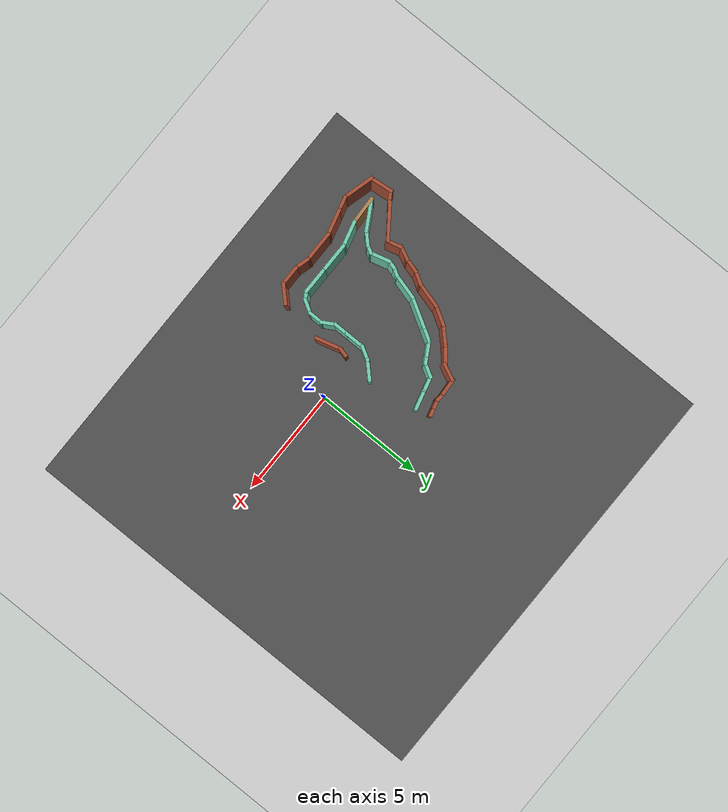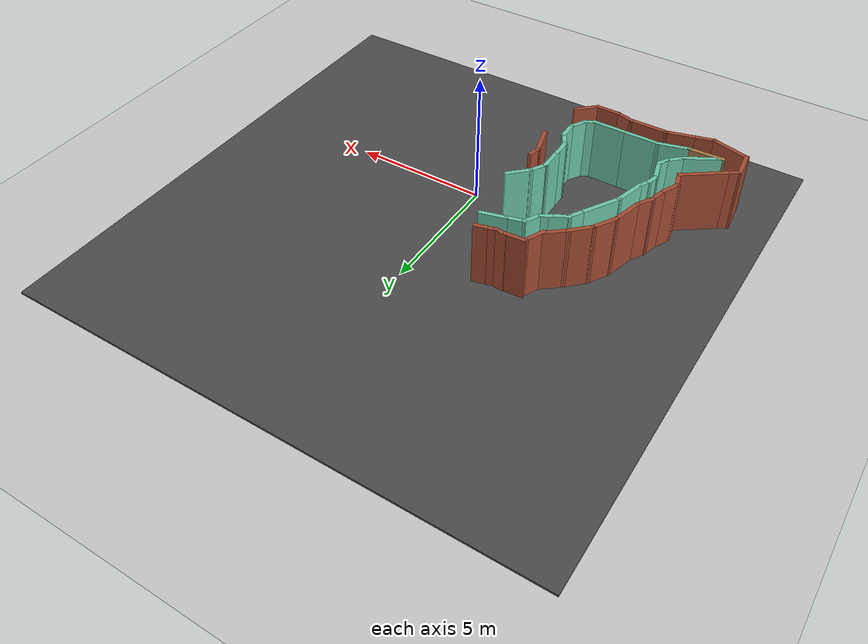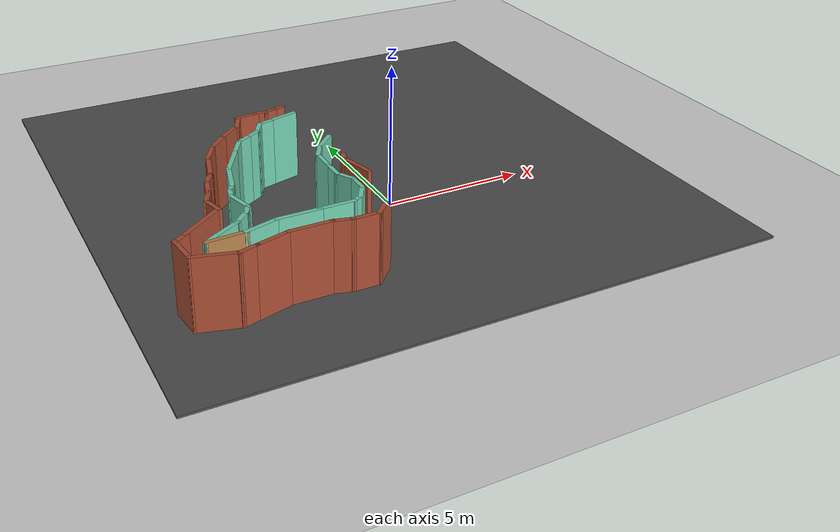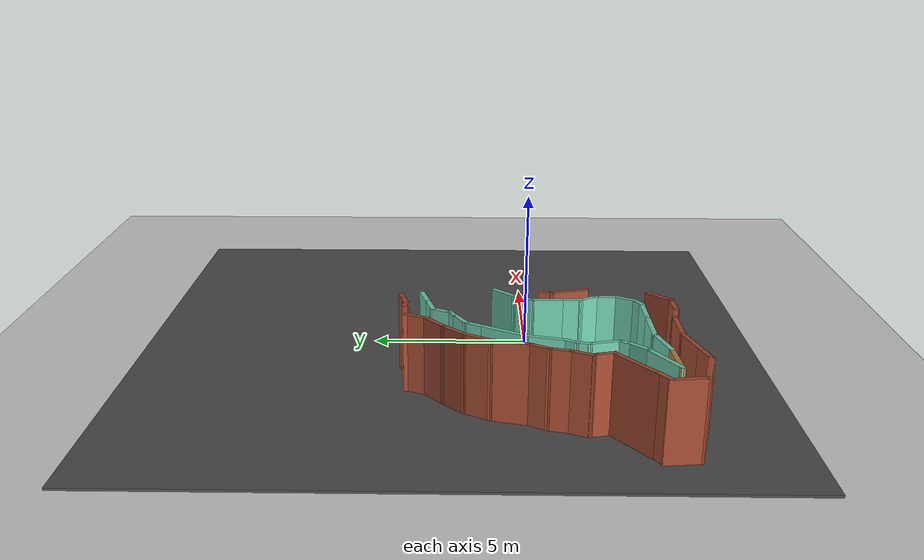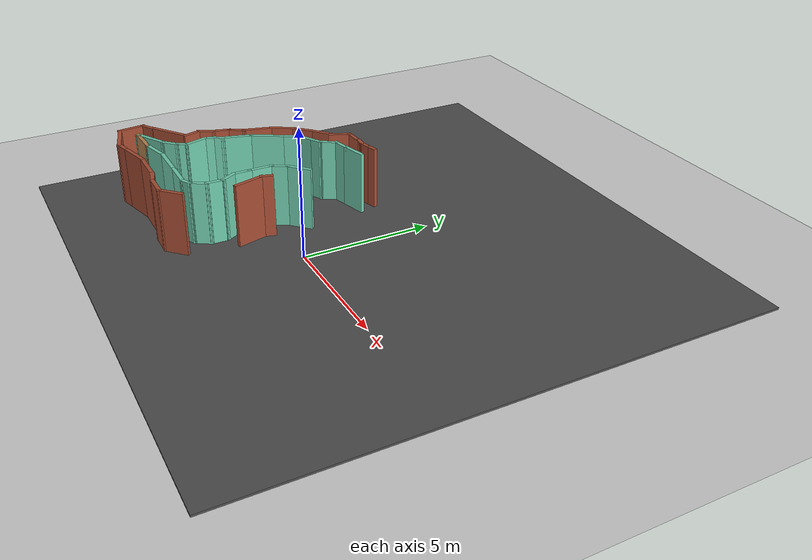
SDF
<sdf version="1.7">
 <world name="default">
  <model name="ground_plane">
   <static>1</static>
   <link name="link">
    <collision name="collision">
     <geometry><plane><normal>0 0 1</normal><size>100 100</size></plane></geometry>
     <surface><friction><ode><mu>100</mu><mu2>50</mu2></ode></friction></surface>
    </collision>
    <visual name="visual">
     <cast_shadows>0</cast_shadows>
     <geometry><plane><normal>0 0 1</normal><size>100 100</size></plane></geometry>
     <material>
      <script><uri>file://media/materials/scripts/gazebo.material</uri><name>Gazebo/Grey</name></script>
     </material>
    </visual>
   </link>
  </model>
  <model name="f1race">
   <pose>0.074946 0.030873 0 0 -0 0</pose>
   <link name="Wall_1">
    <collision name="Wall_1_Collision">
     <geometry><box><size>1.77399 0.15 2.5</size></box></geometry>
     <pose>0 0 1.25 0 -0 0</pose>
    </collision>
    <visual name="Wall_1_Visual">
     <pose>0 0 1.25 0 -0 0</pose>
     <geometry><box><size>1.77399 0.15 2.5</size></box></geometry>
     <material>
      <script><uri>file://media/materials/scripts/gazebo.material</uri><name>Gazebo/Bricks</name></script>
      <ambient>1 1 1 1</ambient>
     </material>
     <meta><layer>0</layer></meta>
    </visual>
    <pose>-7.48864 -2.53585 0 0 -0 0.634257</pose>
   </link>
   <link name="Wall_10">
    <collision name="Wall_10_Collision">
     <geometry><box><size>0.868267 0.15 2.5</size></box></geometry>
     <pose>0 0 1.25 0 -0 0</pose>
    </collision>
    <visual name="Wall_10_Visual">
     <pose>0 0 1.25 0 -0 0</pose>
     <geometry><box><size>0.868267 0.15 2.5</size></box></geometry>
     <material>
      <script><uri>file://media/materials/scripts/gazebo.material</uri><name>Gazebo/Bricks</name></script>
      <ambient>1 1 1 1</ambient>
     </material>
     <meta><layer>0</layer></meta>
    </visual>
    <pose>-4.18241 3.3812 0 0 -0 1.13992</pose>
   </link>
   <link name="Wall_100">
    <collision name="Wall_100_Collision">
     <geometry><box><size>1.25 0.15 2.5</size></box></geometry>
     <pose>0 0 1.25 0 -0 0</pose>
    </collision>
    <visual name="Wall_100_Visual">
     <pose>0 0 1.25 0 -0 0</pose>
     <geometry><box><size>1.25 0.15 2.5</size></box></geometry>
     <material>
      <script><uri>file://media/materials/scripts/gazebo.material</uri><name>Gazebo/Grey</name></script>
      <ambient>0.435294 0.796078 0.67451 1</ambient>
     </material>
     <meta><layer>0</layer></meta>
    </visual>
    <pose>-3.58993 -3.34068 0 0 -0 3.14159</pose>
   </link>
   <link name="Wall_101">
    <collision name="Wall_101_Collision">
     <geometry><box><size>1.5 0.15 2.5</size></box></geometry>
     <pose>0 0 1.25 0 -0 0</pose>
    </collision>
    <visual name="Wall_101_Visual">
     <pose>0 0 1.25 0 -0 0</pose>
     <geometry><box><size>1.5 0.15 2.5</size></box></geometry>
     <material>
      <script><uri>file://media/materials/scripts/gazebo.material</uri><name>Gazebo/Grey</name></script>
      <ambient>0.435294 0.796078 0.67451 1</ambient>
     </material>
     <meta><layer>0</layer></meta>
    </visual>
    <pose>-4.81493 -3.34068 0 0 -0 3.14159</pose>
   </link>
   <link name="Wall_102">
    <collision name="Wall_102_Collision">
     <geometry><box><size>1.25 0.15 2.5</size></box></geometry>
     <pose>0 0 1.25 0 -0 0</pose>
    </collision>
    <visual name="Wall_102_Visual">
     <pose>0 0 1.25 0 -0 0</pose>
     <geometry><box><size>1.25 0.15 2.5</size></box></geometry>
     <material>
      <script><uri>file://media/materials/scripts/gazebo.material</uri><name>Gazebo/Grey</name></script>
      <ambient>0.435294 0.796078 0.67451 1</ambient>
     </material>
     <meta><layer>0</layer></meta>
    </visual>
    <pose>-6.02119 -3.48304 0 0 -0 -2.87979</pose>
   </link>
   <link name="Wall_103">
    <collision name="Wall_103_Collision">
     <geometry><box><size>1.34679 0.15 2.5</size></box></geometry>
     <pose>0 0 1.25 0 -0 0</pose>
    </collision>
    <visual name="Wall_103_Visual">
     <pose>0 0 1.25 0 -0 0</pose>
     <geometry><box><size>1.34679 0.15 2.5</size></box></geometry>
     <material>
      <script><uri>file://media/materials/scripts/gazebo.material</uri><name>Gazebo/Wood</name></script>
      <ambient>0.435294 0.796078 0.67451 1</ambient>
     </material>
     <meta><layer>0</layer></meta>
    </visual>
    <pose>-7.15023 -3.65249 0 0 -0 -3.09628</pose>
   </link>
   <link name="Wall_11">
    <collision name="Wall_11_Collision">
     <geometry><box><size>0.864232 0.15 2.5</size></box></geometry>
     <pose>0 0 1.25 0 -0 0</pose>
    </collision>
    <visual name="Wall_11_Visual">
     <pose>0 0 1.25 0 -0 0</pose>
     <geometry><box><size>0.864232 0.15 2.5</size></box></geometry>
     <material>
      <script><uri>file://media/materials/scripts/gazebo.material</uri><name>Gazebo/Bricks</name></script>
      <ambient>1 1 1 1</ambient>
     </material>
     <meta><layer>0</layer></meta>
    </visual>
    <pose>-3.70274 3.75855 0 0 -0 0.068506</pose>
   </link>
   <link name="Wall_12">
    <collision name="Wall_12_Collision">
     <geometry><box><size>0.490724 0.15 2.5</size></box></geometry>
     <pose>0 0 1.25 0 -0 0</pose>
    </collision>
    <visual name="Wall_12_Visual">
     <pose>0 0 1.25 0 -0 0</pose>
     <geometry><box><size>0.490724 0.15 2.5</size></box></geometry>
     <material>
      <script><uri>file://media/materials/scripts/gazebo.material</uri><name>Gazebo/Bricks</name></script>
      <ambient>1 1 1 1</ambient>
     </material>
     <meta><layer>0</layer></meta>
    </visual>
    <pose>-3.17742 3.78839 0 0 -0 -0.124807</pose>
   </link>
   <link name="Wall_13">
    <collision name="Wall_13_Collision">
     <geometry><box><size>0.5 0.15 2.5</size></box></geometry>
     <pose>0 0 1.25 0 -0 0</pose>
    </collision>
    <visual name="Wall_13_Visual">
     <pose>0 0 1.25 0 -0 0</pose>
     <geometry><box><size>0.5 0.15 2.5</size></box></geometry>
     <material>
      <script><uri>file://media/materials/scripts/gazebo.material</uri><name>Gazebo/Bricks</name></script>
      <ambient>1 1 1 1</ambient>
     </material>
     <meta><layer>0</layer></meta>
    </visual>
    <pose>-2.83935 3.81247 0 0 -0 0.261799</pose>
   </link>
   <link name="Wall_14">
    <collision name="Wall_14_Collision">
     <geometry><box><size>0.5 0.15 2.5</size></box></geometry>
     <pose>0 0 1.25 0 -0 0</pose>
    </collision>
    <visual name="Wall_14_Visual">
     <pose>0 0 1.25 0 -0 0</pose>
     <geometry><box><size>0.5 0.15 2.5</size></box></geometry>
     <material>
      <script><uri>file://media/materials/scripts/gazebo.material</uri><name>Gazebo/Bricks</name></script>
      <ambient>1 1 1 1</ambient>
     </material>
     <meta><layer>0</layer></meta>
    </visual>
    <pose>-2.50127 3.90306 0 0 -0 0.261799</pose>
   </link>
   <link name="Wall_2">
    <collision name="Wall_2_Collision">
     <geometry><box><size>0.75 0.15 2.5</size></box></geometry>
     <pose>0 0 1.25 0 -0 0</pose>
    </collision>
    <visual name="Wall_2_Visual">
     <pose>0 0 1.25 0 -0 0</pose>
     <geometry><box><size>0.75 0.15 2.5</size></box></geometry>
     <material>
      <script><uri>file://media/materials/scripts/gazebo.material</uri><name>Gazebo/Bricks</name></script>
      <ambient>1 1 1 1</ambient>
     </material>
     <meta><layer>0</layer></meta>
    </visual>
    <pose>-6.88561 -1.7649 0 0 -0 1.8326</pose>
   </link>
   <link name="Wall_3">
    <collision name="Wall_3_Collision">
     <geometry><box><size>0.761754 0.15 2.5</size></box></geometry>
     <pose>0 0 1.25 0 -0 0</pose>
    </collision>
    <visual name="Wall_3_Visual">
     <pose>0 0 1.25 0 -0 0</pose>
     <geometry><box><size>0.761754 0.15 2.5</size></box></geometry>
     <material>
      <script><uri>file://media/materials/scripts/gazebo.material</uri><name>Gazebo/Bricks</name></script>
      <ambient>1 1 1 1</ambient>
     </material>
     <meta><layer>0</layer></meta>
    </visual>
    <pose>-6.85901 -1.19864 0 0 -0 1.12877</pose>
   </link>
   <link name="Wall_4">
    <collision name="Wall_4_Collision">
     <geometry><box><size>0.75 0.15 2.5</size></box></geometry>
     <pose>0 0 1.25 0 -0 0</pose>
    </collision>
    <visual name="Wall_4_Visual">
     <pose>0 0 1.25 0 -0 0</pose>
     <geometry><box><size>0.75 0.15 2.5</size></box></geometry>
     <material>
      <script><uri>file://media/materials/scripts/gazebo.material</uri><name>Gazebo/Bricks</name></script>
      <ambient>1 1 1 1</ambient>
     </material>
     <meta><layer>0</layer></meta>
    </visual>
    <pose>-6.65052 -0.632387 0 0 -0 1.309</pose>
   </link>
   <link name="Wall_43">
    <collision name="Wall_43_Collision">
     <geometry><box><size>0.5 0.15 2.5</size></box></geometry>
     <pose>0 0 1.25 0 -0 0</pose>
    </collision>
    <visual name="Wall_43_Visual">
     <pose>0 0 1.25 0 -0 0</pose>
     <geometry><box><size>0.5 0.15 2.5</size></box></geometry>
     <material>
      <script><uri>file://media/materials/scripts/gazebo.material</uri><name>Gazebo/Bricks</name></script>
      <ambient>1 1 1 1</ambient>
     </material>
     <meta><layer>0</layer></meta>
    </visual>
    <pose>-2.03829 -0.550593 0 0 -0 -1.8326</pose>
   </link>
   <link name="Wall_44">
    <collision name="Wall_44_Collision">
     <geometry><box><size>1.25 0.15 2.5</size></box></geometry>
     <pose>0 0 1.25 0 -0 0</pose>
    </collision>
    <visual name="Wall_44_Visual">
     <pose>0 0 1.25 0 -0 0</pose>
     <geometry><box><size>1.25 0.15 2.5</size></box></geometry>
     <material>
      <script><uri>file://media/materials/scripts/gazebo.material</uri><name>Gazebo/Bricks</name></script>
      <ambient>1 1 1 1</ambient>
     </material>
     <meta><layer>0</layer></meta>
    </visual>
    <pose>-1.94124 -1.25089 0 0 -0 -1.309</pose>
   </link>
   <link name="Wall_47">
    <collision name="Wall_47_Collision">
     <geometry><box><size>1 0.15 2.5</size></box></geometry>
     <pose>0 0 1.25 0 -0 0</pose>
    </collision>
    <visual name="Wall_47_Visual">
     <pose>0 0 1.25 0 -0 0</pose>
     <geometry><box><size>1 0.15 2.5</size></box></geometry>
     <material>
      <script><uri>file://media/materials/scripts/gazebo.material</uri><name>Gazebo/Bricks</name></script>
      <ambient>1 1 1 1</ambient>
     </material>
     <meta><layer>0</layer></meta>
    </visual>
    <pose>-2.38411 -3.99519 0 0 -0 -2.35619</pose>
   </link>
   <link name="Wall_48">
    <collision name="Wall_48_Collision">
     <geometry><box><size>1 0.15 2.5</size></box></geometry>
     <pose>0 0 1.25 0 -0 0</pose>
    </collision>
    <visual name="Wall_48_Visual">
     <pose>0 0 1.25 0 -0 0</pose>
     <geometry><box><size>1 0.15 2.5</size></box></geometry>
     <material>
      <script><uri>file://media/materials/scripts/gazebo.material</uri><name>Gazebo/Bricks</name></script>
      <ambient>1 1 1 1</ambient>
     </material>
     <meta><layer>0</layer></meta>
    </visual>
    <pose>-3.10963 -4.29571 0 0 -0 3.14159</pose>
   </link>
   <link name="Wall_49">
    <collision name="Wall_49_Collision">
     <geometry><box><size>0.75 0.15 2.5</size></box></geometry>
     <pose>0 0 1.25 0 -0 0</pose>
    </collision>
    <visual name="Wall_49_Visual">
     <pose>0 0 1.25 0 -0 0</pose>
     <geometry><box><size>0.75 0.15 2.5</size></box></geometry>
     <material>
      <script><uri>file://media/materials/scripts/gazebo.material</uri><name>Gazebo/Bricks</name></script>
      <ambient>1 1 1 1</ambient>
     </material>
     <meta><layer>0</layer></meta>
    </visual>
    <pose>-3.8244 -4.21806 0 0 -0 2.87979</pose>
   </link>
   <link name="Wall_5">
    <collision name="Wall_5_Collision">
     <geometry><box><size>0.75 0.15 2.5</size></box></geometry>
     <pose>0 0 1.25 0 -0 0</pose>
    </collision>
    <visual name="Wall_5_Visual">
     <pose>0 0 1.25 0 -0 0</pose>
     <geometry><box><size>0.75 0.15 2.5</size></box></geometry>
     <material>
      <script><uri>file://media/materials/scripts/gazebo.material</uri><name>Gazebo/Bricks</name></script>
      <ambient>1 1 1 1</ambient>
     </material>
     <meta><layer>0</layer></meta>
    </visual>
    <pose>-6.42288 -0.082801 0 0 -0 1.0472</pose>
   </link>
   <link name="Wall_50">
    <collision name="Wall_50_Collision">
     <geometry><box><size>1.5 0.15 2.5</size></box></geometry>
     <pose>0 0 1.25 0 -0 0</pose>
    </collision>
    <visual name="Wall_50_Visual">
     <pose>0 0 1.25 0 -0 0</pose>
     <geometry><box><size>1.5 0.15 2.5</size></box></geometry>
     <material>
      <script><uri>file://media/materials/scripts/gazebo.material</uri><name>Gazebo/Bricks</name></script>
      <ambient>1 1 1 1</ambient>
     </material>
     <meta><layer>0</layer></meta>
    </visual>
    <pose>-4.78918 -4.14042 0 0 -0 3.14159</pose>
   </link>
   <link name="Wall_51">
    <collision name="Wall_51_Collision">
     <geometry><box><size>1.25 0.15 2.5</size></box></geometry>
     <pose>0 0 1.25 0 -0 0</pose>
    </collision>
    <visual name="Wall_51_Visual">
     <pose>0 0 1.25 0 -0 0</pose>
     <geometry><box><size>1.25 0.15 2.5</size></box></geometry>
     <material>
      <script><uri>file://media/materials/scripts/gazebo.material</uri><name>Gazebo/Bricks</name></script>
      <ambient>1 1 1 1</ambient>
     </material>
     <meta><layer>0</layer></meta>
    </visual>
    <pose>-5.99544 -4.28277 0 0 -0 -2.87979</pose>
   </link>
   <link name="Wall_52">
    <collision name="Wall_52_Collision">
     <geometry><box><size>0.75 0.15 2.5</size></box></geometry>
     <pose>0 0 1.25 0 -0 0</pose>
    </collision>
    <visual name="Wall_52_Visual">
     <pose>0 0 1.25 0 -0 0</pose>
     <geometry><box><size>0.75 0.15 2.5</size></box></geometry>
     <material>
      <script><uri>file://media/materials/scripts/gazebo.material</uri><name>Gazebo/Bricks</name></script>
      <ambient>1 1 1 1</ambient>
     </material>
     <meta><layer>0</layer></meta>
    </visual>
    <pose>-6.81648 -4.50276 0 0 -0 -2.87979</pose>
   </link>
   <link name="Wall_53">
    <collision name="Wall_53_Collision">
     <geometry><box><size>1.5 0.15 2.5</size></box></geometry>
     <pose>0 0 1.25 0 -0 0</pose>
    </collision>
    <visual name="Wall_53_Visual">
     <pose>0 0 1.25 0 -0 0</pose>
     <geometry><box><size>1.5 0.15 2.5</size></box></geometry>
     <material>
      <script><uri>file://media/materials/scripts/gazebo.material</uri><name>Gazebo/Bricks</name></script>
      <ambient>1 1 1 1</ambient>
     </material>
     <meta><layer>0</layer></meta>
    </visual>
    <pose>-7.75826 -4.40571 0 0 -0 2.87979</pose>
   </link>
   <link name="Wall_54">
    <collision name="Wall_54_Collision">
     <geometry><box><size>1.12821 0.15 2.5</size></box></geometry>
     <pose>0 0 1.25 0 -0 0</pose>
    </collision>
    <visual name="Wall_54_Visual">
     <pose>0 0 1.25 0 -0 0</pose>
     <geometry><box><size>1.12821 0.15 2.5</size></box></geometry>
     <material>
      <script><uri>file://media/materials/scripts/gazebo.material</uri><name>Gazebo/Bricks</name></script>
      <ambient>1 1 1 1</ambient>
     </material>
     <meta><layer>0</layer></meta>
    </visual>
    <pose>-8.46346 -3.7448 0 0 -0 1.67978</pose>
   </link>
   <link name="Wall_55">
    <collision name="Wall_55_Collision">
     <geometry><box><size>0.595188 0.15 2.5</size></box></geometry>
     <pose>0 0 1.25 0 -0 0</pose>
    </collision>
    <visual name="Wall_55_Visual">
     <pose>0 0 1.25 0 -0 0</pose>
     <geometry><box><size>0.595188 0.15 2.5</size></box></geometry>
     <material>
      <script><uri>file://media/materials/scripts/gazebo.material</uri><name>Gazebo/Bricks</name></script>
      <ambient>1 1 1 1</ambient>
     </material>
     <meta><layer>0</layer></meta>
    </visual>
    <pose>-8.30309 -3.13781 0 0 -0 0.573586</pose>
   </link>
   <link name="Wall_57">
    <collision name="Wall_57_Collision">
     <geometry><box><size>1.5 0.15 2.5</size></box></geometry>
     <pose>0 0 1.25 0 -0 0</pose>
    </collision>
    <visual name="Wall_57_Visual">
     <pose>0 0 1.25 0 -0 0</pose>
     <geometry><box><size>1.5 0.15 2.5</size></box></geometry>
     <material>
      <script><uri>file://media/materials/scripts/gazebo.material</uri><name>Gazebo/Grey</name></script>
      <ambient>0.435294 0.796078 0.67451 1</ambient>
     </material>
     <meta><layer>0</layer></meta>
    </visual>
    <pose>-7.16345 -3.34209 0 0 -0 0.523599</pose>
   </link>
   <link name="Wall_58">
    <collision name="Wall_58_Collision">
     <geometry><box><size>0.75 0.15 2.5</size></box></geometry>
     <pose>0 0 1.25 0 -0 0</pose>
    </collision>
    <visual name="Wall_58_Visual">
     <pose>0 0 1.25 0 -0 0</pose>
     <geometry><box><size>0.75 0.15 2.5</size></box></geometry>
     <material>
      <script><uri>file://media/materials/scripts/gazebo.material</uri><name>Gazebo/Grey</name></script>
      <ambient>0.435294 0.796078 0.67451 1</ambient>
     </material>
     <meta><layer>0</layer></meta>
    </visual>
    <pose>-6.36675 -2.79246 0 0 -0 0.785398</pose>
   </link>
   <link name="Wall_59">
    <collision name="Wall_59_Collision">
     <geometry><box><size>0.5 0.15 2.5</size></box></geometry>
     <pose>0 0 1.25 0 -0 0</pose>
    </collision>
    <visual name="Wall_59_Visual">
     <pose>0 0 1.25 0 -0 0</pose>
     <geometry><box><size>0.5 0.15 2.5</size></box></geometry>
     <material>
      <script><uri>file://media/materials/scripts/gazebo.material</uri><name>Gazebo/Grey</name></script>
      <ambient>0.435294 0.796078 0.67451 1</ambient>
     </material>
     <meta><layer>0</layer></meta>
    </visual>
    <pose>-6.06712 -2.42878 0 0 -0 1.0472</pose>
   </link>
   <link name="Wall_6">
    <collision name="Wall_6_Collision">
     <geometry><box><size>1.25 0.15 2.5</size></box></geometry>
     <pose>0 0 1.25 0 -0 0</pose>
    </collision>
    <visual name="Wall_6_Visual">
     <pose>0 0 1.25 0 -0 0</pose>
     <geometry><box><size>1.25 0.15 2.5</size></box></geometry>
     <material>
      <script><uri>file://media/materials/scripts/gazebo.material</uri><name>Gazebo/Bricks</name></script>
      <ambient>1 1 1 1</ambient>
     </material>
     <meta><layer>0</layer></meta>
    </visual>
    <pose>-6.13053 0.708265 0 0 -0 1.309</pose>
   </link>
   <link name="Wall_60">
    <collision name="Wall_60_Collision">
     <geometry><box><size>1 0.15 2.5</size></box></geometry>
     <pose>0 0 1.25 0 -0 0</pose>
    </collision>
    <visual name="Wall_60_Visual">
     <pose>0 0 1.25 0 -0 0</pose>
     <geometry><box><size>1 0.15 2.5</size></box></geometry>
     <material>
      <script><uri>file://media/materials/scripts/gazebo.material</uri><name>Gazebo/Grey</name></script>
      <ambient>0.435294 0.796078 0.67451 1</ambient>
     </material>
     <meta><layer>0</layer></meta>
    </visual>
    <pose>-6.08961 -1.8667 0 0 -0 1.8326</pose>
   </link>
   <link name="Wall_61">
    <collision name="Wall_61_Collision">
     <geometry><box><size>0.5 0.15 2.5</size></box></geometry>
     <pose>0 0 1.25 0 -0 0</pose>
    </collision>
    <visual name="Wall_61_Visual">
     <pose>0 0 1.25 0 -0 0</pose>
     <geometry><box><size>0.5 0.15 2.5</size></box></geometry>
     <material>
      <script><uri>file://media/materials/scripts/gazebo.material</uri><name>Gazebo/Grey</name></script>
      <ambient>0.435294 0.796078 0.67451 1</ambient>
     </material>
     <meta><layer>0</layer></meta>
    </visual>
    <pose>-6.15432 -1.28715 0 0 -0 1.309</pose>
   </link>
   <link name="Wall_62">
    <collision name="Wall_62_Collision">
     <geometry><box><size>0.5 0.15 2.5</size></box></geometry>
     <pose>0 0 1.25 0 -0 0</pose>
    </collision>
    <visual name="Wall_62_Visual">
     <pose>0 0 1.25 0 -0 0</pose>
     <geometry><box><size>0.5 0.15 2.5</size></box></geometry>
     <material>
      <script><uri>file://media/materials/scripts/gazebo.material</uri><name>Gazebo/Grey</name></script>
      <ambient>0.435294 0.796078 0.67451 1</ambient>
     </material>
     <meta><layer>0</layer></meta>
    </visual>
    <pose>-6.02152 -0.966556 0 0 -0 1.0472</pose>
   </link>
   <link name="Wall_63">
    <collision name="Wall_63_Collision">
     <geometry><box><size>1.25 0.15 2.5</size></box></geometry>
     <pose>0 0 1.25 0 -0 0</pose>
    </collision>
    <visual name="Wall_63_Visual">
     <pose>0 0 1.25 0 -0 0</pose>
     <geometry><box><size>1.25 0.15 2.5</size></box></geometry>
     <material>
      <script><uri>file://media/materials/scripts/gazebo.material</uri><name>Gazebo/Grey</name></script>
      <ambient>0.435294 0.796078 0.67451 1</ambient>
     </material>
     <meta><layer>0</layer></meta>
    </visual>
    <pose>-5.79167 -0.283742 0 0 -0 1.309</pose>
   </link>
   <link name="Wall_64">
    <collision name="Wall_64_Collision">
     <geometry><box><size>1.5 0.15 2.5</size></box></geometry>
     <pose>0 0 1.25 0 -0 0</pose>
    </collision>
    <visual name="Wall_64_Visual">
     <pose>0 0 1.25 0 -0 0</pose>
     <geometry><box><size>1.5 0.15 2.5</size></box></geometry>
     <material>
      <script><uri>file://media/materials/scripts/gazebo.material</uri><name>Gazebo/Grey</name></script>
      <ambient>0.435294 0.796078 0.67451 1</ambient>
     </material>
     <meta><layer>0</layer></meta>
    </visual>
    <pose>-5.31182 0.832084 0 0 -0 1.0472</pose>
   </link>
   <link name="Wall_65">
    <collision name="Wall_65_Collision">
     <geometry><box><size>0.75 0.15 2.5</size></box></geometry>
     <pose>0 0 1.25 0 -0 0</pose>
    </collision>
    <visual name="Wall_65_Visual">
     <pose>0 0 1.25 0 -0 0</pose>
     <geometry><box><size>0.75 0.15 2.5</size></box></geometry>
     <material>
      <script><uri>file://media/materials/scripts/gazebo.material</uri><name>Gazebo/Grey</name></script>
      <ambient>0.435294 0.796078 0.67451 1</ambient>
     </material>
     <meta><layer>0</layer></meta>
    </visual>
    <pose>-4.82432 1.67646 0 0 -0 1.0472</pose>
   </link>
   <link name="Wall_66">
    <collision name="Wall_66_Collision">
     <geometry><box><size>0.75 0.15 2.5</size></box></geometry>
     <pose>0 0 1.25 0 -0 0</pose>
    </collision>
    <visual name="Wall_66_Visual">
     <pose>0 0 1.25 0 -0 0</pose>
     <geometry><box><size>0.75 0.15 2.5</size></box></geometry>
     <material>
      <script><uri>file://media/materials/scripts/gazebo.material</uri><name>Gazebo/Grey</name></script>
      <ambient>0.435294 0.796078 0.67451 1</ambient>
     </material>
     <meta><layer>0</layer></meta>
    </visual>
    <pose>-4.41452 2.08627 0 0 -0 0.523599</pose>
   </link>
   <link name="Wall_67">
    <collision name="Wall_67_Collision">
     <geometry><box><size>0.5 0.15 2.5</size></box></geometry>
     <pose>0 0 1.25 0 -0 0</pose>
    </collision>
    <visual name="Wall_67_Visual">
     <pose>0 0 1.25 0 -0 0</pose>
     <geometry><box><size>0.5 0.15 2.5</size></box></geometry>
     <material>
      <script><uri>file://media/materials/scripts/gazebo.material</uri><name>Gazebo/Grey</name></script>
      <ambient>0.435294 0.796078 0.67451 1</ambient>
     </material>
     <meta><layer>0</layer></meta>
    </visual>
    <pose>-4.00315 2.32377 0 0 -0 0.523599</pose>
   </link>
   <link name="Wall_68">
    <collision name="Wall_68_Collision">
     <geometry><box><size>0.75 0.15 2.5</size></box></geometry>
     <pose>0 0 1.25 0 -0 0</pose>
    </collision>
    <visual name="Wall_68_Visual">
     <pose>0 0 1.25 0 -0 0</pose>
     <geometry><box><size>0.75 0.15 2.5</size></box></geometry>
     <material>
      <script><uri>file://media/materials/scripts/gazebo.material</uri><name>Gazebo/Grey</name></script>
      <ambient>0.435294 0.796078 0.67451 1</ambient>
     </material>
     <meta><layer>0</layer></meta>
    </visual>
    <pose>-3.7016 2.67107 0 0 -0 1.0472</pose>
   </link>
   <link name="Wall_69">
    <collision name="Wall_69_Collision">
     <geometry><box><size>0.75 0.15 2.5</size></box></geometry>
     <pose>0 0 1.25 0 -0 0</pose>
    </collision>
    <visual name="Wall_69_Visual">
     <pose>0 0 1.25 0 -0 0</pose>
     <geometry><box><size>0.75 0.15 2.5</size></box></geometry>
     <material>
      <script><uri>file://media/materials/scripts/gazebo.material</uri><name>Gazebo/Grey</name></script>
      <ambient>0.435294 0.796078 0.67451 1</ambient>
     </material>
     <meta><layer>0</layer></meta>
    </visual>
    <pose>-3.26182 3.00853 0 0 -0 0.261799</pose>
   </link>
   <link name="Wall_7">
    <collision name="Wall_7_Collision">
     <geometry><box><size>1 0.15 2.5</size></box></geometry>
     <pose>0 0 1.25 0 -0 0</pose>
    </collision>
    <visual name="Wall_7_Visual">
     <pose>0 0 1.25 0 -0 0</pose>
     <geometry><box><size>1 0.15 2.5</size></box></geometry>
     <material>
      <script><uri>file://media/materials/scripts/gazebo.material</uri><name>Gazebo/Bricks</name></script>
      <ambient>1 1 1 1</ambient>
     </material>
     <meta><layer>0</layer></meta>
    </visual>
    <pose>-5.77567 1.60759 0 0 -0 1.0472</pose>
   </link>
   <link name="Wall_70">
    <collision name="Wall_70_Collision">
     <geometry><box><size>1 0.15 2.5</size></box></geometry>
     <pose>0 0 1.25 0 -0 0</pose>
    </collision>
    <visual name="Wall_70_Visual">
     <pose>0 0 1.25 0 -0 0</pose>
     <geometry><box><size>1 0.15 2.5</size></box></geometry>
     <material>
      <script><uri>file://media/materials/scripts/gazebo.material</uri><name>Gazebo/Grey</name></script>
      <ambient>0.435294 0.796078 0.67451 1</ambient>
     </material>
     <meta><layer>0</layer></meta>
    </visual>
    <pose>-2.56153 3.19617 0 0 -0 0.261799</pose>
   </link>
   <link name="Wall_8">
    <collision name="Wall_8_Collision">
     <geometry><box><size>1 0.15 2.5</size></box></geometry>
     <pose>0 0 1.25 0 -0 0</pose>
    </collision>
    <visual name="Wall_8_Visual">
     <pose>0 0 1.25 0 -0 0</pose>
     <geometry><box><size>1 0.15 2.5</size></box></geometry>
     <material>
      <script><uri>file://media/materials/scripts/gazebo.material</uri><name>Gazebo/Bricks</name></script>
      <ambient>1 1 1 1</ambient>
     </material>
     <meta><layer>0</layer></meta>
    </visual>
    <pose>-5.26265 2.27617 0 0 -0 0.785398</pose>
   </link>
   <link name="Wall_9">
    <collision name="Wall_9_Collision">
     <geometry><box><size>0.936497 0.15 2.5</size></box></geometry>
     <pose>0 0 1.25 0 -0 0</pose>
    </collision>
    <visual name="Wall_9_Visual">
     <pose>0 0 1.25 0 -0 0</pose>
     <geometry><box><size>0.936497 0.15 2.5</size></box></geometry>
     <material>
      <script><uri>file://media/materials/scripts/gazebo.material</uri><name>Gazebo/Bricks</name></script>
      <ambient>1 1 1 1</ambient>
     </material>
     <meta><layer>0</layer></meta>
    </visual>
    <pose>-4.66057 2.82909 0 0 -0 0.696887</pose>
   </link>
   <link name="Wall_92">
    <collision name="Wall_92_Collision">
     <geometry><box><size>1 0.15 2.5</size></box></geometry>
     <pose>0 0 1.25 0 -0 0</pose>
    </collision>
    <visual name="Wall_92_Visual">
     <pose>0 0 1.25 0 -0 0</pose>
     <geometry><box><size>1 0.15 2.5</size></box></geometry>
     <material>
      <script><uri>file://media/materials/scripts/gazebo.material</uri><name>Gazebo/Grey</name></script>
      <ambient>0.435294 0.796078 0.67451 1</ambient>
     </material>
     <meta><layer>0</layer></meta>
    </visual>
    <pose>-2.1363 0.743682 0 0 -0 -2.35619</pose>
   </link>
   <link name="Wall_93">
    <collision name="Wall_93_Collision">
     <geometry><box><size>0.75 0.15 2.5</size></box></geometry>
     <pose>0 0 1.25 0 -0 0</pose>
    </collision>
    <visual name="Wall_93_Visual">
     <pose>0 0 1.25 0 -0 0</pose>
     <geometry><box><size>0.75 0.15 2.5</size></box></geometry>
     <material>
      <script><uri>file://media/materials/scripts/gazebo.material</uri><name>Gazebo/Grey</name></script>
      <ambient>0.435294 0.796078 0.67451 1</ambient>
     </material>
     <meta><layer>0</layer></meta>
    </visual>
    <pose>-2.58682 0.183354 0 0 -0 -2.0944</pose>
   </link>
   <link name="Wall_94">
    <collision name="Wall_94_Collision">
     <geometry><box><size>1 0.15 2.5</size></box></geometry>
     <pose>0 0 1.25 0 -0 0</pose>
    </collision>
    <visual name="Wall_94_Visual">
     <pose>0 0 1.25 0 -0 0</pose>
     <geometry><box><size>1 0.15 2.5</size></box></geometry>
     <material>
      <script><uri>file://media/materials/scripts/gazebo.material</uri><name>Gazebo/Grey</name></script>
      <ambient>0.435294 0.796078 0.67451 1</ambient>
     </material>
     <meta><layer>0</layer></meta>
    </visual>
    <pose>-2.73682 -0.501454 0 0 -0 -1.5708</pose>
   </link>
   <link name="Wall_95">
    <collision name="Wall_95_Collision">
     <geometry><box><size>0.75 0.15 2.5</size></box></geometry>
     <pose>0 0 1.25 0 -0 0</pose>
    </collision>
    <visual name="Wall_95_Visual">
     <pose>0 0 1.25 0 -0 0</pose>
     <geometry><box><size>0.75 0.15 2.5</size></box></geometry>
     <material>
      <script><uri>file://media/materials/scripts/gazebo.material</uri><name>Gazebo/Grey</name></script>
      <ambient>0.435294 0.796078 0.67451 1</ambient>
     </material>
     <meta><layer>0</layer></meta>
    </visual>
    <pose>-2.73682 -1.22645 0 0 -0 -1.5708</pose>
   </link>
   <link name="Wall_96">
    <collision name="Wall_96_Collision">
     <geometry><box><size>0.75 0.15 2.5</size></box></geometry>
     <pose>0 0 1.25 0 -0 0</pose>
    </collision>
    <visual name="Wall_96_Visual">
     <pose>0 0 1.25 0 -0 0</pose>
     <geometry><box><size>0.75 0.15 2.5</size></box></geometry>
     <material>
      <script><uri>file://media/materials/scripts/gazebo.material</uri><name>Gazebo/Grey</name></script>
      <ambient>0.435294 0.796078 0.67451 1</ambient>
     </material>
     <meta><layer>0</layer></meta>
    </visual>
    <pose>-2.58682 -1.78626 0 0 -0 -1.0472</pose>
   </link>
   <link name="Wall_97">
    <collision name="Wall_97_Collision">
     <geometry><box><size>0.75 0.15 2.5</size></box></geometry>
     <pose>0 0 1.25 0 -0 0</pose>
    </collision>
    <visual name="Wall_97_Visual">
     <pose>0 0 1.25 0 -0 0</pose>
     <geometry><box><size>0.75 0.15 2.5</size></box></geometry>
     <material>
      <script><uri>file://media/materials/scripts/gazebo.material</uri><name>Gazebo/Grey</name></script>
      <ambient>0.435294 0.796078 0.67451 1</ambient>
     </material>
     <meta><layer>0</layer></meta>
    </visual>
    <pose>-2.43682 -2.34607 0 0 -0 -1.5708</pose>
   </link>
   <link name="Wall_98">
    <collision name="Wall_98_Collision">
     <geometry><box><size>0.75 0.15 2.5</size></box></geometry>
     <pose>0 0 1.25 0 -0 0</pose>
    </collision>
    <visual name="Wall_98_Visual">
     <pose>0 0 1.25 0 -0 0</pose>
     <geometry><box><size>0.75 0.15 2.5</size></box></geometry>
     <material>
      <script><uri>file://media/materials/scripts/gazebo.material</uri><name>Gazebo/Grey</name></script>
      <ambient>0.435294 0.796078 0.67451 1</ambient>
     </material>
     <meta><layer>0</layer></meta>
    </visual>
    <pose>-2.58682 -2.90588 0 0 -0 -2.0944</pose>
   </link>
   <link name="Wall_99">
    <collision name="Wall_99_Collision">
     <geometry><box><size>0.5 0.15 2.5</size></box></geometry>
     <pose>0 0 1.25 0 -0 0</pose>
    </collision>
    <visual name="Wall_99_Visual">
     <pose>0 0 1.25 0 -0 0</pose>
     <geometry><box><size>0.5 0.15 2.5</size></box></geometry>
     <material>
      <script><uri>file://media/materials/scripts/gazebo.material</uri><name>Gazebo/Grey</name></script>
      <ambient>0.435294 0.796078 0.67451 1</ambient>
     </material>
     <meta><layer>0</layer></meta>
    </visual>
    <pose>-2.88838 -3.25318 0 0 -0 -2.61799</pose>
   </link>
   <static>1</static>
  </model>
  <model name="asphalt_plane">
   <static>1</static>
   <link name="link">
    <collision name="collision">
     <geometry><box><size>20 20 0.1</size></box></geometry>
     <surface><friction><ode><mu>0.5</mu><mu2>0.3</mu2></ode></friction></surface>
    </collision>
    <visual name="visual">
     <cast_shadows>0</cast_shadows>
     <geometry><box><size>20 20 0.1</size></box></geometry>
     <material>
      <script>
       <uri>model://asphalt_plane/materials/scripts</uri>
       <uri>model://asphalt_plane/materials/textures</uri>
       <name>vrc/asphalt</name>
      </script>
     </material>
    </visual>
   </link>
   <pose>0.075192 2.56336 0 0 -0 0</pose>
  </model>
 </world>
</sdf>
